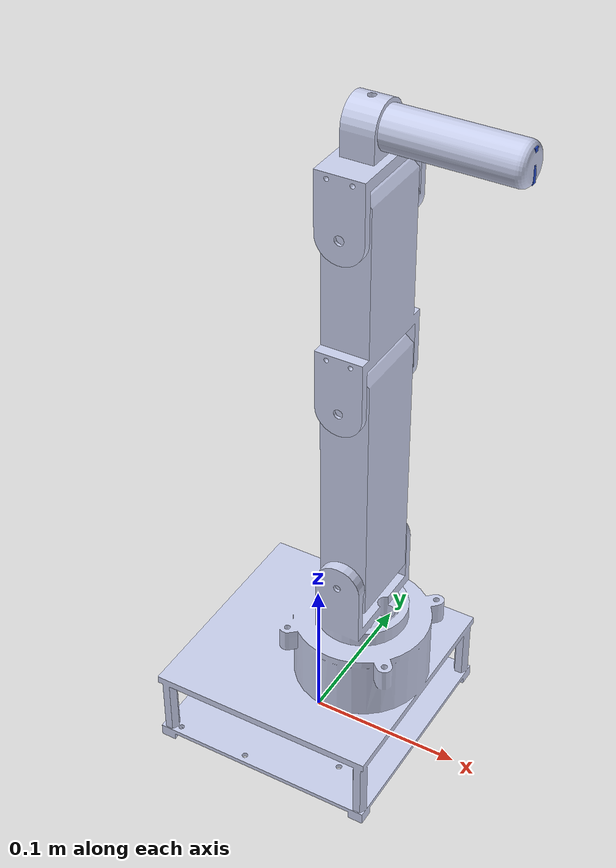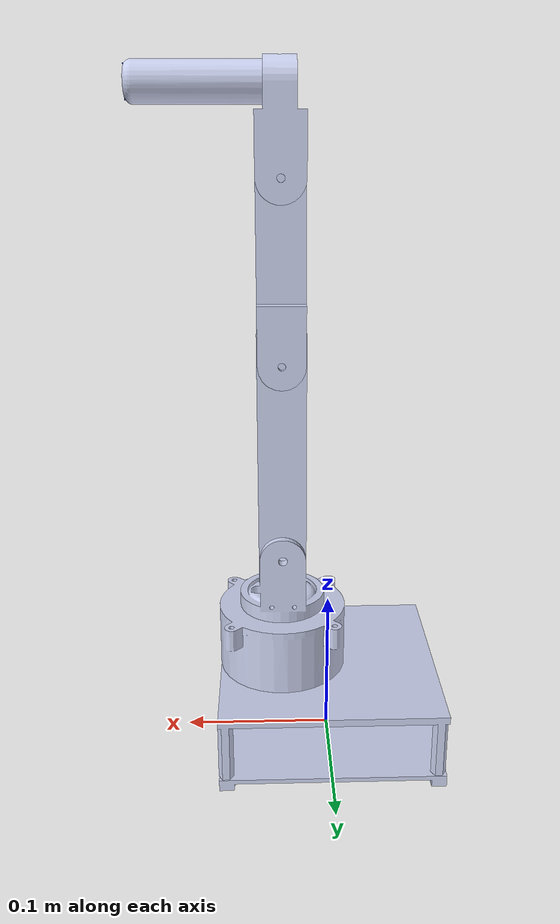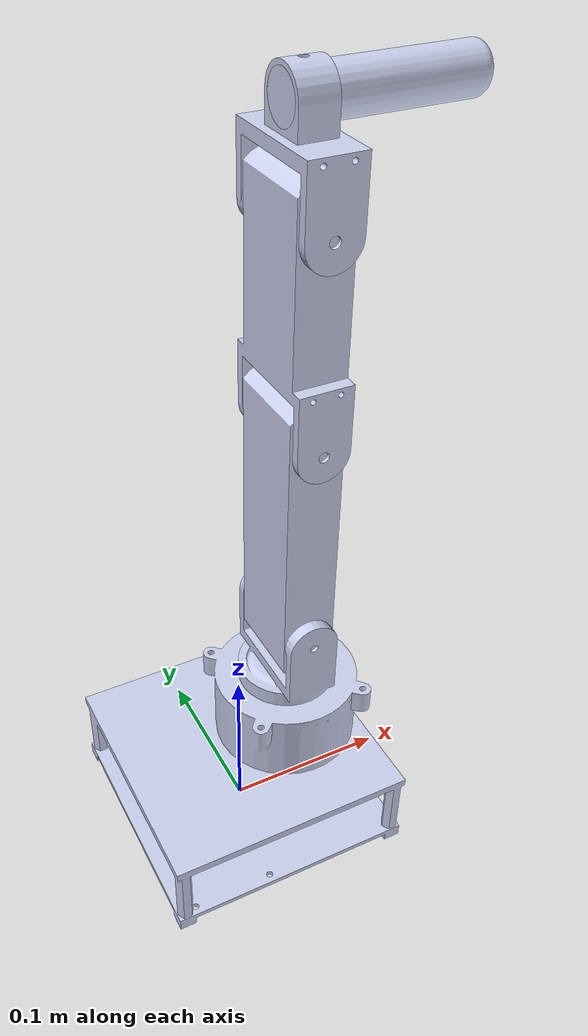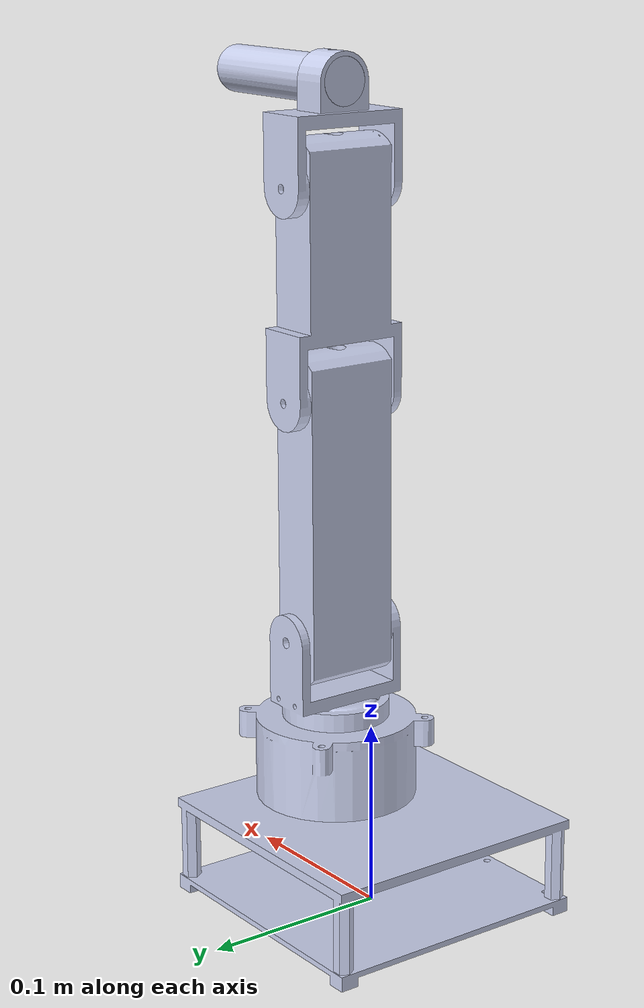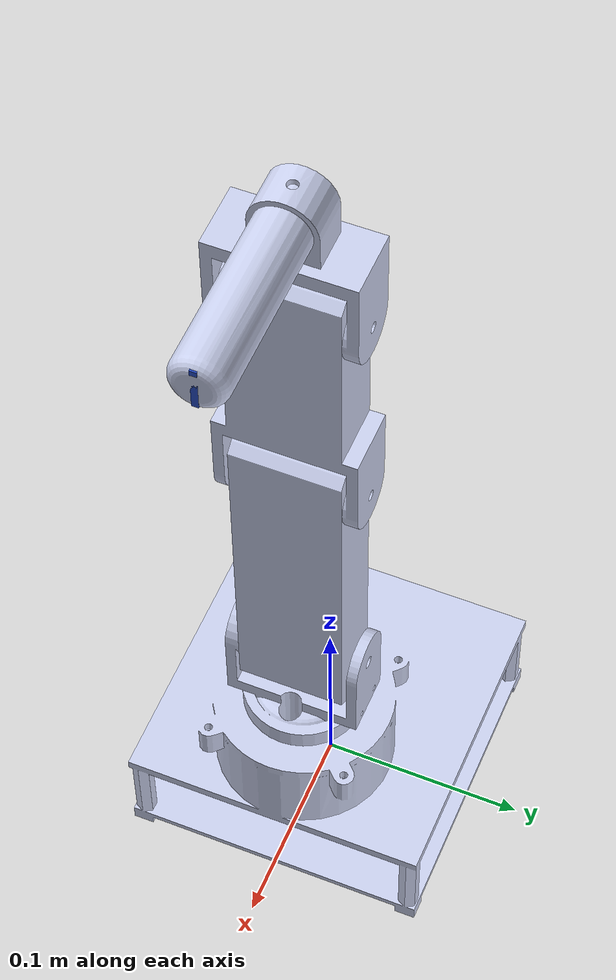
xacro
<?xml version="1.0"?>
<robot
  name="tengri_robot_urdf" xmlns:xacro="http://ros.org/wiki/xacro">

  <link name="world"/>
  <joint name="base_joint" type="fixed">
    <parent link="world"/>
    <child link="base_link"/>
    <origin rpy="0 0 0" xyz="0.0 0.0 0.0"/>
  </joint>

  <link
    name="base_link">
    <inertial>
      <origin
        xyz="0.0081614 5.1099E-05 0.035297"
        rpy="0 0 0" />
      <mass
        value="0.97974" />
      <inertia
        ixx="0.0014534"
        ixy="1.0663E-06"
        ixz="-2.1094E-05"
        iyy="0.0014771"
        iyz="-3.4449E-10"
        izz="0.0028624" />
    </inertial>
    <visual>
      <origin
        xyz="0 0 0"
        rpy="0 0 0" />
      <geometry>
        <mesh
          filename="package://tengri_robot_urdf/meshes/base_link.STL" />
      </geometry>
      <material
        name="">
        <color
          rgba="0.79216 0.81961 0.93333 1" />
      </material>
    </visual>
    <collision>
      <origin
        xyz="0 0 0"
        rpy="0 0 0" />
      <geometry>
        <mesh
          filename="package://tengri_robot_urdf/meshes/base_link.STL" />
      </geometry>
    </collision>
  </link>
  <link
    name="link1">
    <inertial>
      <origin
        xyz="0.00053204 4.082E-06 -0.0013621"
        rpy="0 0 0" />
      <mass
        value="0.56984" />
      <inertia
        ixx="0.00024122"
        ixy="1.0045E-06"
        ixz="1.8665E-06"
        iyy="0.00018334"
        iyz="-4.805E-05"
        izz="0.00021426" />
    </inertial>
    <visual>
      <origin
        xyz="0 0 0"
        rpy="0 0 0" />
      <geometry>
        <mesh
          filename="package://tengri_robot_urdf/meshes/link1.STL" />
      </geometry>
      <material
        name="">
        <color
          rgba="0.79216 0.81961 0.93333 1" />
      </material>
    </visual>
    <collision>
      <origin
        xyz="0 0 0"
        rpy="0 0 0" />
      <geometry>
        <mesh
          filename="package://tengri_robot_urdf/meshes/link1.STL" />
      </geometry>
    </collision>
  </link>
  <joint
    name="joint1"
    type="revolute">
    <origin
      xyz="0.031896 0 0.108"
      rpy="0 0 3.1416" />
    <parent
      link="base_link" />
    <child
      link="link1" />
    <axis
      xyz="0 0 -1" />
    <limit
      lower="-2.3562"
      upper="2.3562"
      effort="350"
      velocity="0.2618" />
  </joint>
  <link
    name="link2">
    <inertial>
      <origin
        xyz="0.065 -3.5627E-09 0.0003498"
        rpy="0 0 0" />
      <mass
        value="0.74616" />
      <inertia
        ixx="0.00023225"
        ixy="1.8584E-10"
        ixz="7.5381E-11"
        iyy="0.002327"
        iyz="-1.9043E-11"
        izz="0.0022933" />
    </inertial>
    <visual>
      <origin
        xyz="0 0 0"
        rpy="0 0 0" />
      <geometry>
        <mesh
          filename="package://tengri_robot_urdf/meshes/link2.STL" />
      </geometry>
      <material
        name="">
        <color
          rgba="0.79216 0.81961 0.93333 1" />
      </material>
    </visual>
    <collision>
      <origin
        xyz="0 0 0"
        rpy="0 0 0" />
      <geometry>
        <mesh
          filename="package://tengri_robot_urdf/meshes/link2.STL" />
      </geometry>
    </collision>
  </link>
  <joint
    name="joint2"
    type="revolute">
    <origin
      xyz="0 0 0.037"
      rpy="1.5708 -1.5708 0" />
    <parent
      link="link1" />
    <child
      link="link2" />
    <axis
      xyz="0 0 -1" />
    <limit
      lower="-1.5708"
      upper="1.5708"
      effort="350"
      velocity="0.2618" />
  </joint>
  <link
    name="link3">
    <inertial>
      <origin
        xyz="0.0657 -8.0744E-09 0.00017686"
        rpy="0 0 0" />
      <mass
        value="0.56731" />
      <inertia
        ixx="0.00017985"
        ixy="2.8825E-10"
        ixz="5.4947E-05"
        iyy="0.00087367"
        iyz="-3.1466E-11"
        izz="0.00081538" />
    </inertial>
    <visual>
      <origin
        xyz="0 0 0"
        rpy="0 0 0" />
      <geometry>
        <mesh
          filename="package://tengri_robot_urdf/meshes/link3.STL" />
      </geometry>
      <material
        name="">
        <color
          rgba="0.79216 0.81961 0.93333 1" />
      </material>
    </visual>
    <collision>
      <origin
        xyz="0 0 0"
        rpy="0 0 0" />
      <geometry>
        <mesh
          filename="package://tengri_robot_urdf/meshes/link3.STL" />
      </geometry>
    </collision>
  </link>
  <joint
    name="joint3"
    type="revolute">
    <origin
      xyz="0.13 0 0"
      rpy="0 0 0" />
    <parent
      link="link2" />
    <child
      link="link3" />
    <axis
      xyz="0 0 1" />
    <limit
      lower="-1.5708"
      upper="1.5708"
      effort="350"
      velocity="0.2618" />
  </joint>
  <link
    name="link4">
    <inertial>
      <origin
        xyz="0.026848 -5.0403E-10 -3.3866E-05"
        rpy="0 0 0" />
      <mass
        value="0.2507" />
      <inertia
        ixx="8.0063E-05"
        ixy="6.5944E-12"
        ixz="3.0854E-05"
        iyy="0.00012549"
        iyz="6.7447E-13"
        izz="7.8808E-05" />
    </inertial>
    <visual>
      <origin
        xyz="0 0 0"
        rpy="0 0 0" />
      <geometry>
        <mesh
          filename="package://tengri_robot_urdf/meshes/link4.STL" />
      </geometry>
      <material
        name="">
        <color
          rgba="0.79216 0.81961 0.93333 1" />
      </material>
    </visual>
    <collision>
      <origin
        xyz="0 0 0"
        rpy="0 0 0" />
      <geometry>
        <mesh
          filename="package://tengri_robot_urdf/meshes/link4.STL" />
      </geometry>
    </collision>
  </link>
  <joint
    name="joint4"
    type="revolute">
    <origin
      xyz="0.11 0 0"
      rpy="0 0 0" />
    <parent
      link="link3" />
    <child
      link="link4" />
    <axis
      xyz="0 0 1" />
    <limit
      lower="-1.5708"
      upper="1.5708"
      effort="350"
      velocity="0.2618" />
  </joint>
  <link
    name="link5">
    <inertial>
      <origin
        xyz="-1.9804E-18 0 -0.050385"
        rpy="3.1416 0 0" />
      <mass
        value="0.37989" />
      <inertia
        ixx="0.00032663"
        ixy="1.5055E-22"
        ixz="-1.7537E-20"
        iyy="0.00032663"
        iyz="9.4503E-21"
        izz="2.9517E-05" />
    </inertial>
    <visual>
      <origin
        xyz="0 0 0"
        rpy="3.1416 0 0" />
      <geometry>
        <mesh
          filename="package://tengri_robot_urdf/meshes/marker_link.STL" />
      </geometry>
      <material
        name="">
        <color
          rgba="0.79216 0.81961 0.93333 1" />
      </material>
    </visual>
    <collision>
      <origin
        xyz="0 0 0"
        rpy="3.1416 0 0" />
      <geometry>
        <mesh
          filename="package://tengri_robot_urdf/meshes/marker_link.STL" />
      </geometry>
    </collision>
  </link>
  <joint
    name="joint5"
    type="revolute">
    <origin
      xyz="0.052 0.09 0"
      rpy="1.5708 -1.5708 0" />
    <parent
      link="link4" />
    <child
      link="link5" />
    <axis
      xyz="0 0 1" />
    <limit
      lower="-1.5708"
      upper="1.5708"
      effort="100"
      velocity="0.2618" />
  </joint>

  <link name="endeff">
    <visual>
      <geometry>
         <box size="0.003 0.02 0.001"/>
      </geometry>
      <material name="blue"/>
      <origin rpy="0 0 0" xyz="0 0 0.0005"/>
    </visual>
  </link>

  <joint name="joint6" type="revolute">
    <origin rpy="0 0 0" xyz="0 0 0"/>
      <limit effort="1000.0" lower="-1.57" upper="1.57" velocity="0.5"/>
      <parent link="link5"/>
      <child link="endeff"/>
   </joint>

</robot>
